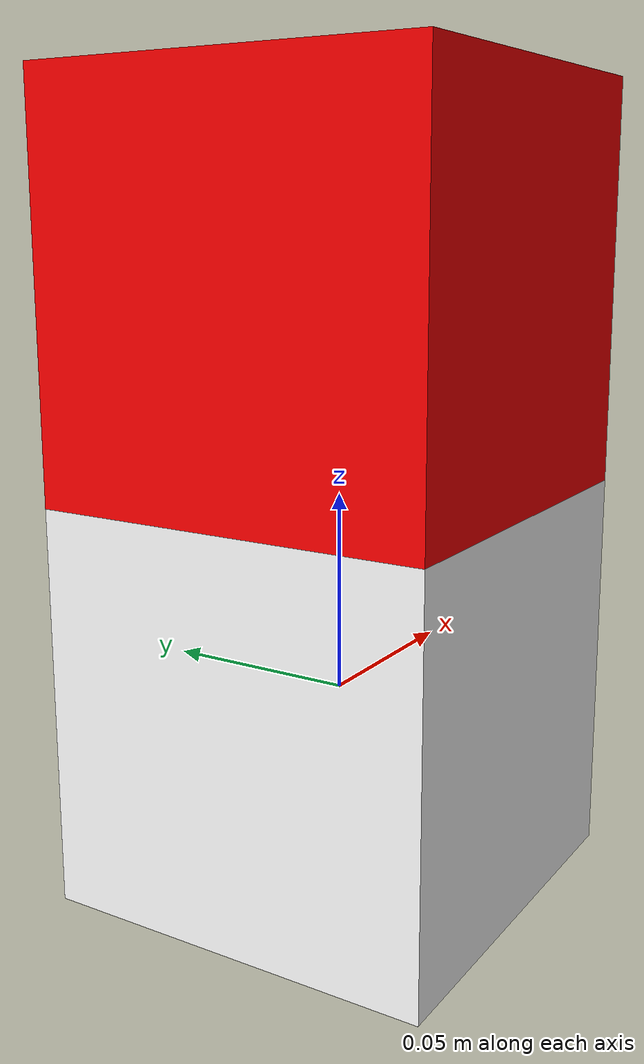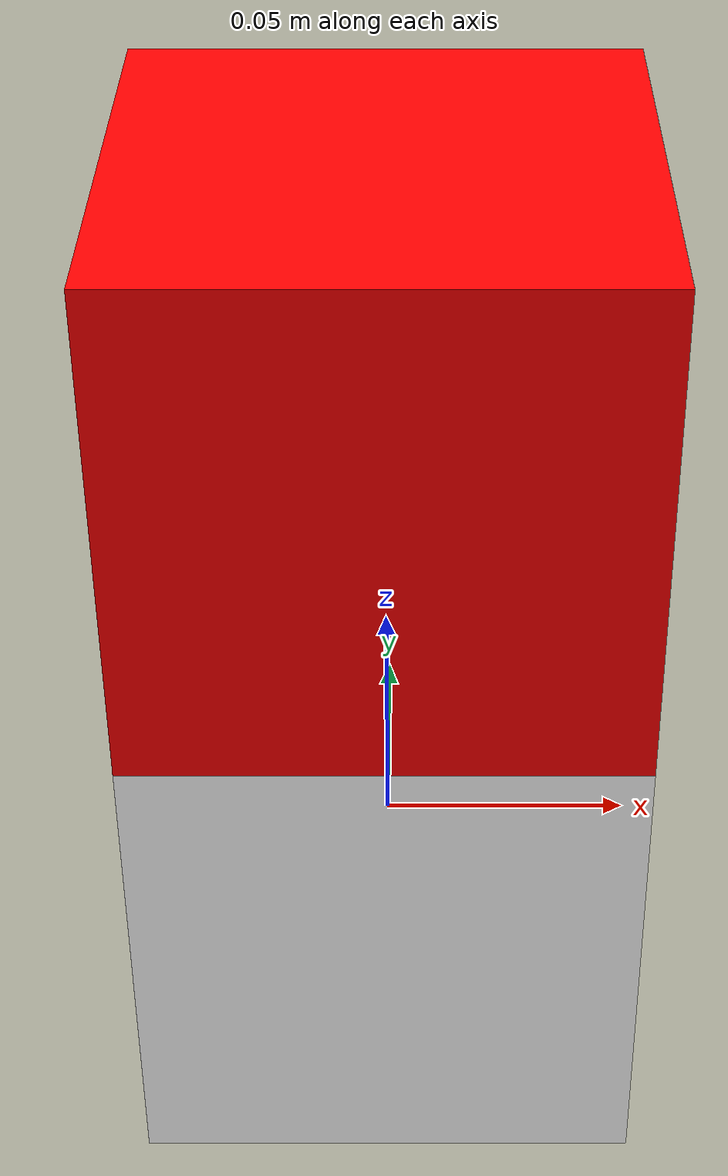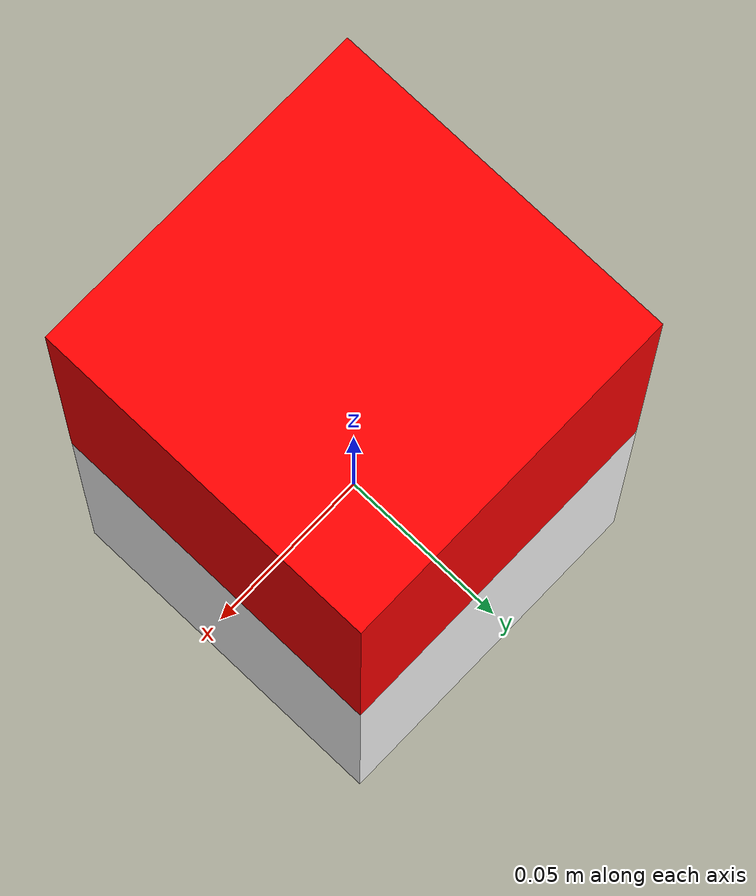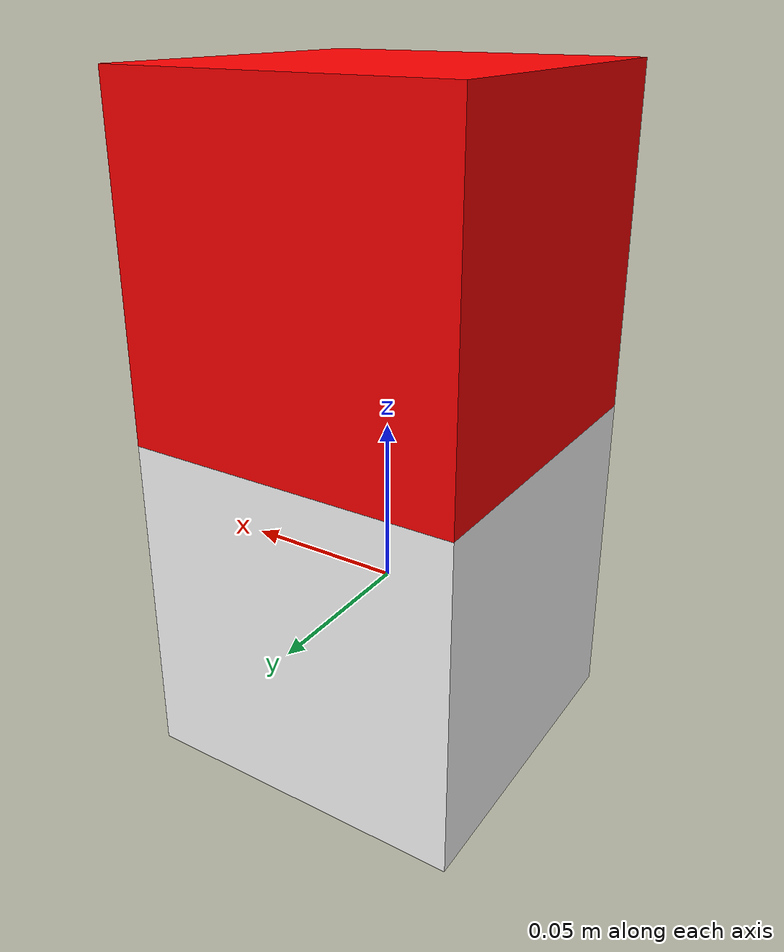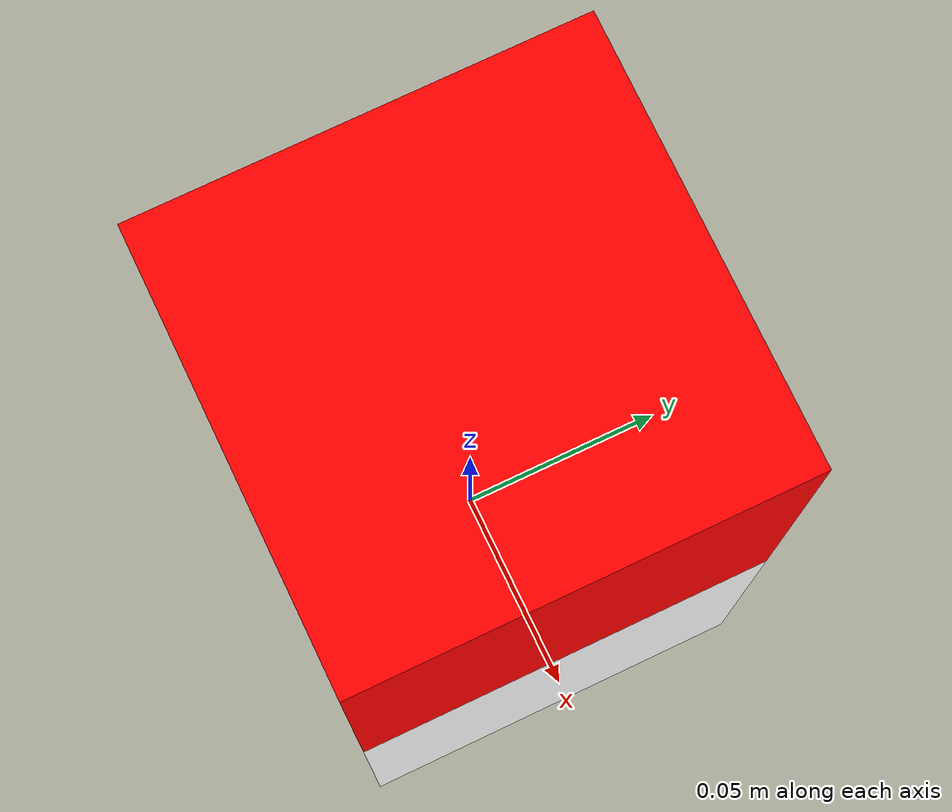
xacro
<?xml version="1.0" ?>
<robot xmlns:xacro="http://www.ros.org/wiki/xacro" name="robot">

    <link name="base_link"/>

    <!-- Define the robot -->
    <joint name="base_joint" type="fixed">
        <origin xyz="0 0 0" rpy="0 0 0"/>
        <parent link="base_link"/>
        <child link="chassis"/>
    </joint>

    <link name="chassis">
        <visual>
            <geometry>
                <box size="0.1 0.1 0.1"/>
            </geometry>
            <material name="white">
                <color rgba="1 1 1 1"/>
            </material>
        </visual>
        <collision>
            <geometry>
                <box size="0.1 0.1 0.1"/>
            </geometry>
        </collision>
    </link>

    <!-- Add the camera to the robot -->
    <joint name="camera_joint" type="fixed">
        <parent link="chassis"/>
        <child link="camera_link"/>
        <origin xyz="0 0 0.1" rpy="0 0 0"/>
    </joint>

    <link name="camera_link">
        <visual>
            <geometry>
                <box size="0.1 0.1 0.1"/>
            </geometry>
            <material name="red">
                <color rgba="1 0 0 1"/>
            </material>
        </visual>
    </link>

    <joint name="camera_optical_joint" type="fixed">
        <parent link="camera_link"/>
        <child link="camera_link_optical"/>
        <origin xyz="0 0 0" rpy="${-pi/2} 0 ${-pi/2}"/>
    </joint>

    <link name="camera_link_optical"></link>

    <!-- Add the gazebo reference -->
    <gazebo reference="camera_link">
        <material>Gazebo/Red</material>
        <sensor name="camera_sensor" type="camera">
            <camera>
                <horizontal_fov>1.047</horizontal_fov>
                <image>
                    <width>640</width>
                    <height>480</height>
                    <format>R8G8B8</format>
                </image>
                <clip>
                    <near>0.01</near>
                    <far>10</far>
                </clip>
            </camera>
            <origin xyz="0 0 0" rpy="0 0 0"/>
            <visualize>true</visualize>
            <plugin name="camera_plugin" filename="libgazebo_ros_camera.so">
                <alwaysOn>true</alwaysOn>
                <updateRate>30.0</updateRate>
                <cameraName>camera</cameraName>
                <imageTopicName>image_raw</imageTopicName>
                <cameraInfoTopicName>camera_info</cameraInfoTopicName>
                <frameName>camera_link_optical</frameName>
                <hackBaseline>0.07</hackBaseline>
                <distortionK1>0.0</distortionK1>
                <distortionK2>0.0</distortionK2>
                <distortionK3>0.0</distortionK3>
                <distortionT1>0.0</distortionT1>
                <distortionT2>0.0</distortionT2>
                <Cx>320.0</Cx>
                <Cy>240.0</Cy>
                <Fx>554.382712</Fx>
                <Fy>554.382712</Fy>
                <width>640</width>
                <height>480</height>
                <depth>3</depth>
                <distortionModel>plumb_bob</distortionModel>
            </plugin>
        </sensor>
    </gazebo>

</robot>
